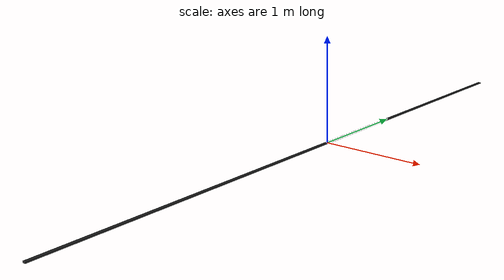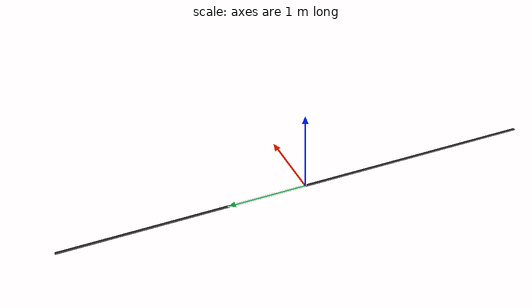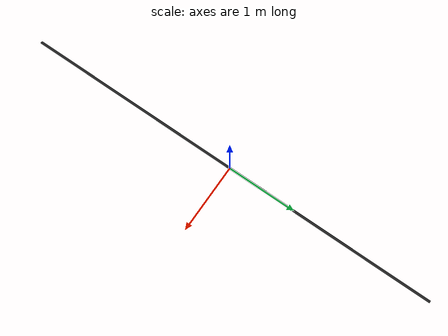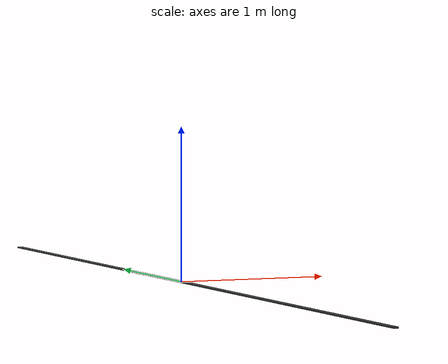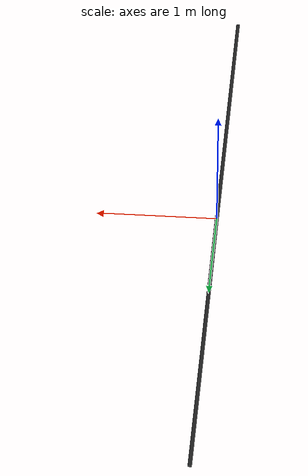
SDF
<?xml version="1.0"?>
<sdf version="1.4">
  <model name="trave_corta">

   <link name="asse_1">
      <collision name="asse_1_collision">
        <geometry>
            <box>
            <size>0.03 6.15 0.01</size>
          </box>
        </geometry>
        <pose frame=''>0 0 0 0 0 0</pose>
      </collision>
      <visual name="asse_1_visual">
        <geometry>
          <box>
            <size>0.03 6.15 0.01</size>
          </box>
        </geometry>
        <pose frame=''>0 0 0 0 0 0</pose>
        <material>
		  <script>
            <uri>file://media/materials/scripts/gazebo.material</uri>
            <name>Gazebo/Black</name>
          </script>
          <ambient>1 1 1 1</ambient>
        </material>
        <meta>
          <layer>0</layer>
        </meta>
      </visual>
      <pose frame=''>0 0 0 0 0 0</pose>
    </link>

  </model>
</sdf>
